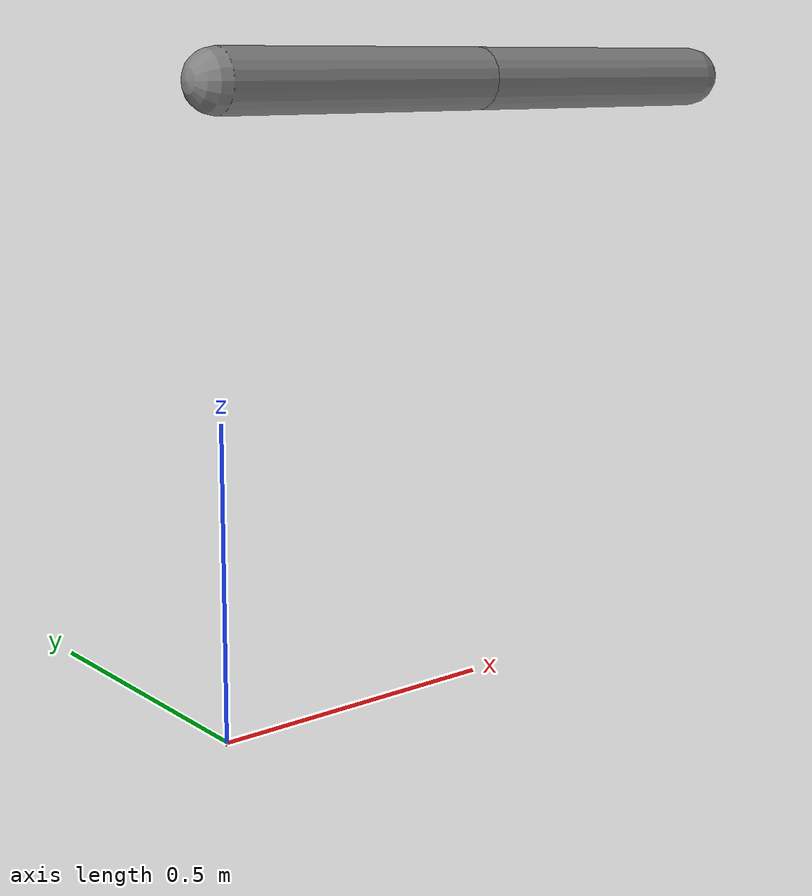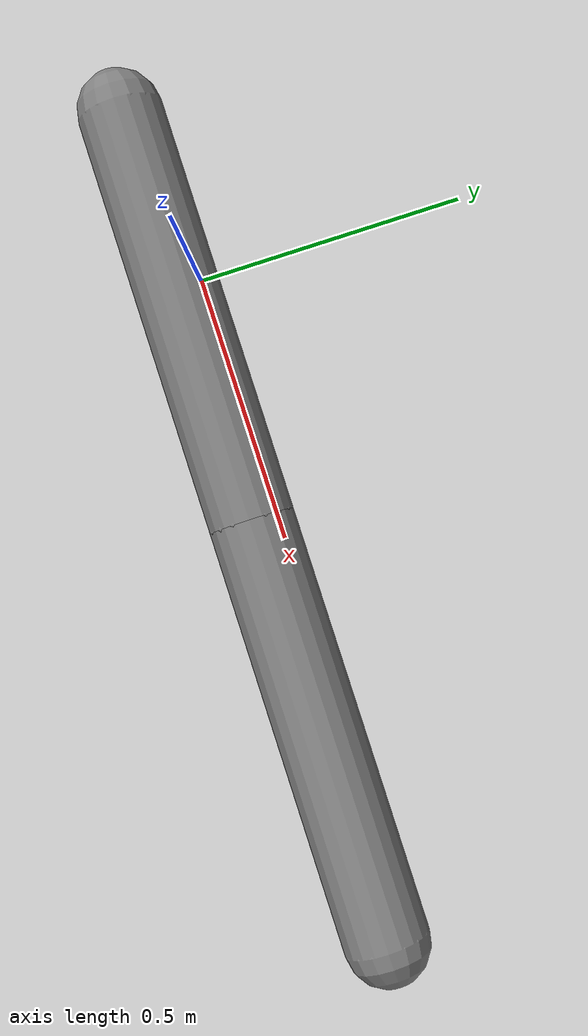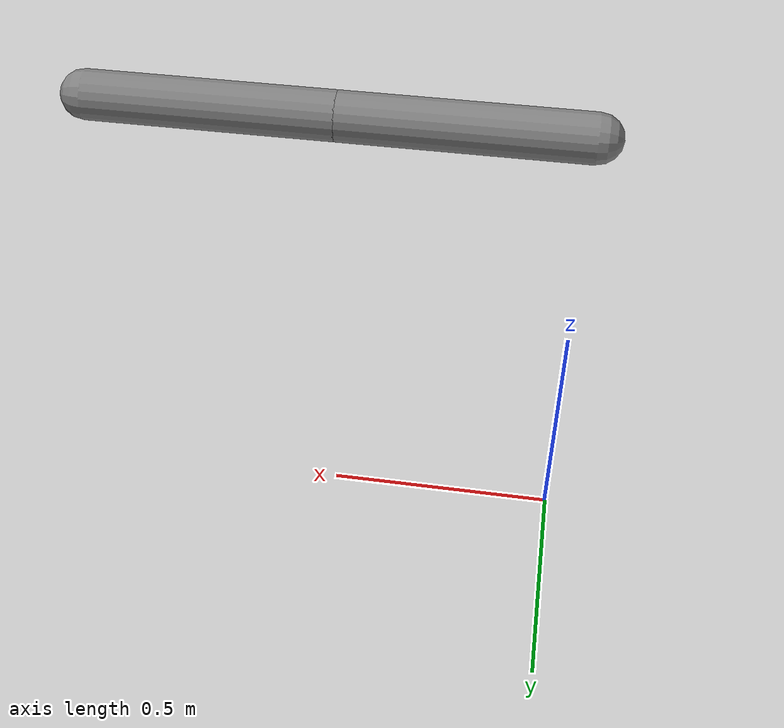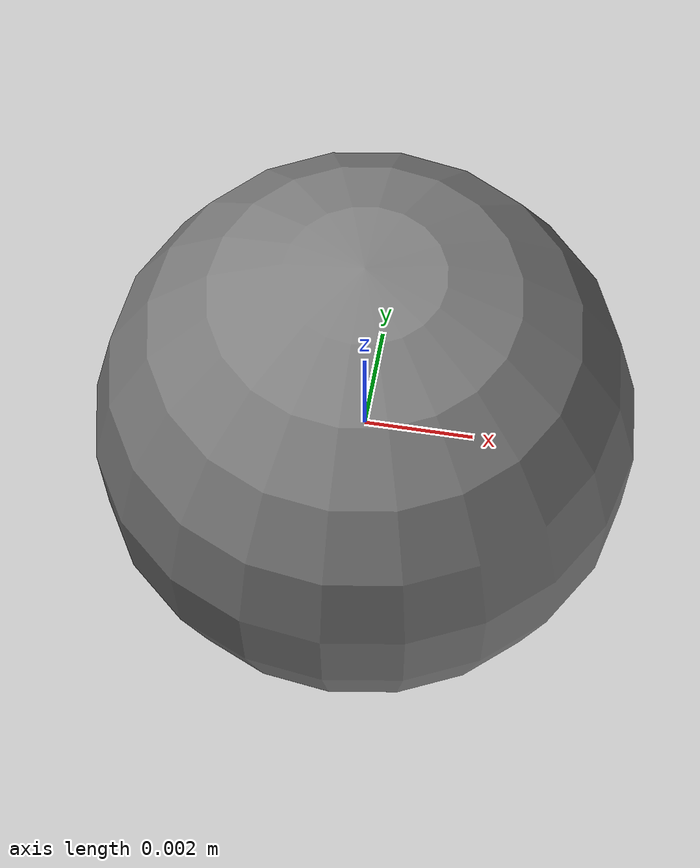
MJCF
<mujoco model="actuators_all">
<!-- all twelve actuator spellings across joint, tendon, site(+refsite), and body transmissions -->
  <worldbody>
    <site name="site_ref" pos="0 0 0"/>
    <body name="link1" pos="0 0 1">
      <joint name="j1" type="hinge" axis="0 0 1"/>
      <geom name="geom_link1" type="capsule" fromto="0 0 0 0.5 0 0" size="0.05"/>
      <site name="site1" pos="0.5 0 0"/>
      <body name="link2" pos="0.5 0 0">
        <joint name="j2" type="hinge" axis="0 1 0"/>
        <geom name="geom_link2" type="capsule" fromto="0 0 0 0.5 0 0" size="0.05"/>
      </body>
    </body>
  </worldbody>

  <tendon>
    <fixed name="ftendon">
      <joint joint="j1" coef="1"/>
    </fixed>
  </tendon>

  <actuator>
    <general name="act_general" tendon="ftendon" gaintype="affine" biastype="affine"
             gainprm="2 0 0" biasprm="0 -10 -1"/>
    <motor name="act_motor" joint="j1"/>
    <position name="act_position" joint="j1" kp="10" dampratio="1"/>
    <velocity name="act_velocity" joint="j1" kv="0.5"/>
    <intvelocity name="act_intvelocity" joint="j2" kp="10" kv="0.5" actrange="-1 1"/>
    <orientation name="act_orientation" site="site1" refsite="site_ref" kp="5" kv="0.5"/>
    <pid name="act_pid" joint="j2" kp="10" ki="0.5" kv="0.25" imax="1"/>
    <damper name="act_damper" joint="j1" kv="0.5" ctrlrange="0 1"/>
    <cylinder name="act_cylinder" joint="j2" timeconst="0.5" area="0.5" diameter="0.25" bias="0 -1 0"/>
    <muscle name="act_muscle" joint="j1" timeconst="0.01 0.04" range="0.75 1.25" force="1"
            lengthrange="0.2 0.6"/>
    <adhesion name="act_adhesion" body="link2" gain="1" ctrlrange="0 1"/>
    <dcmotor name="act_dcmotor" joint="j2" motorconst="0.5 0.25" resistance="1"/>
  </actuator>
</mujoco>
